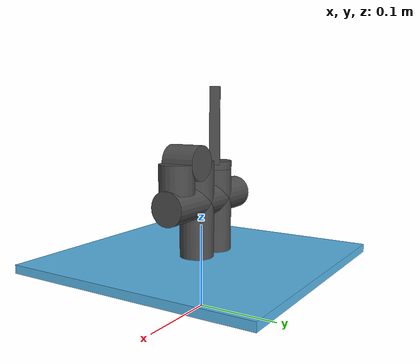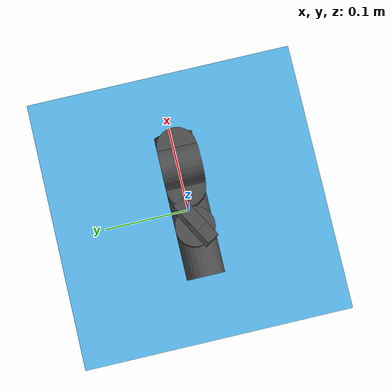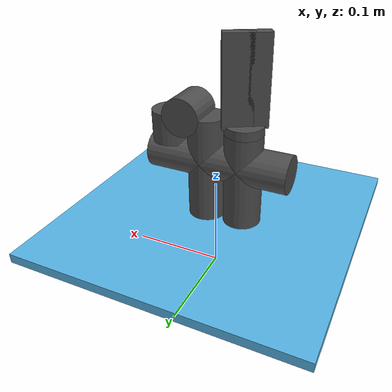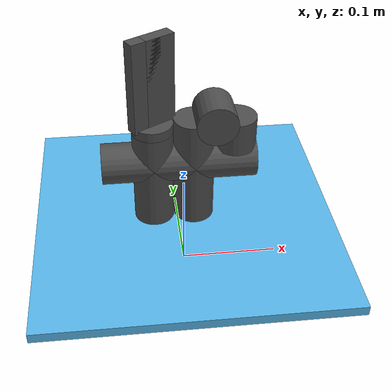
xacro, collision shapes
<?xml version="1.0"?>
<robot name="alpha" xmlns:xacro="http://ros.org/wiki/xacro">

  <!-- Arguments -->
  <xacro:arg name="use_fake_hardware" default="true" />
  <xacro:arg name="serial_port" default="" />
  <xacro:arg name="state_update_frequency" default="250" />
  <xacro:arg name="controllers_file" default="alpha_controllers.yaml" />
  <xacro:arg name="initial_positions_file" default="initial_positions.yaml" />
  <xacro:arg name="namespace" default="" />
  <xacro:arg name="prefix" default="" />
  <xacro:arg name="use_sim" default="false" />
  <xacro:arg name="description_package" default="alpha_description" />

  <!-- Properties -->
  <xacro:property name="description_package" value="$(arg description_package)" />
  <xacro:property name="prefix" value="$(arg prefix)" />
  <xacro:property name="use_sim" value="$(arg use_sim)" />
  <xacro:property name="ee_prefix" value="standard_jaws_" />

  <!-- Imports -->
  <xacro:include filename="$(find ${description_package})/xacro/alpha_platform.urdf.xacro" />
  <xacro:include filename="$(find ${description_package})/xacro/alpha.ros2_control.xacro" />

  <!-- Define a world frame for Moveit -->
  <link name="world" />

  <xacro:alpha_platform_urdf
    prefix="${prefix}"
    ee_prefix="${ee_prefix}"
    parent="world"
    description_package="${description_package}">
    <origin xyz="0 0 0.06" rpy="0 0 0" />
  </xacro:alpha_platform_urdf>

  <xacro:alpha_system
    prefix="${prefix}"
    ee_prefix="${ee_prefix}"
    name="ReachAlpha5"
    serial_port="$(arg serial_port)"
    state_update_frequency="$(arg state_update_frequency)"
    initial_positions_file="$(arg initial_positions_file)"
    description_package="${description_package}" use_sim="${use_sim}"
    use_fake_hardware="$(arg use_fake_hardware)"
  />

  <!-- Include Gazebo requirements -->
  <xacro:if value="${use_sim}">
    <xacro:include filename="$(find ${description_package})/xacro/alpha.gazebo.xacro" />
    <xacro:alpha_gazebo
      prefix="${prefix}"
      ee_prefix="${ee_prefix}"
      description_package="${description_package}"
      namespace="$(arg namespace)"
      controllers_file="$(arg controllers_file)" />
  </xacro:if>

</robot>

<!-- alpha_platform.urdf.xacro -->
<robot name="alpha_platform_urdf" xmlns:xacro="http://ros.org/wiki/xacro">

  <xacro:macro name="alpha_platform_urdf"
    params="
      parent
      prefix
      ee_prefix
      description_package
      *origin">

    <!-- Define a base platform for the alpha -->
    <link name="${prefix}platform">
      <visual>
        <origin rpy="0 0 0" xyz="0 0 0" />
        <geometry>
          <box size="0.3 0.3 0.1" />
        </geometry>
      </visual>
      <collision>
        <geometry>
          <box size="0.3 0.3 0.01" />
        </geometry>
        <origin rpy="0 0 0" xyz="0 0 0" />
      </collision>
    </link>

    <link name="${prefix}base_footprint" />

    <joint name="${prefix}platform_base_joint" type="fixed">
      <xacro:insert_block name="origin" />
      <parent link="${parent}" />
      <child link="${prefix}platform" />
    </joint>

    <joint name="${prefix}platform_joint" type="fixed">
      <origin rpy="0 0 0" xyz="0.05 0 0.07" />
      <parent link="${prefix}platform" />
      <child link="${prefix}base_footprint" />
    </joint>

    <xacro:include filename="$(find ${description_package})/xacro/alpha.urdf.xacro" />

    <xacro:alpha_urdf
      parent="${prefix}base_footprint"
      prefix="${prefix}"
      ee_prefix="${ee_prefix}"
      description_package="${description_package}">
      <origin xyz="0 0 0" rpy="0 0 0" />
    </xacro:alpha_urdf>

  </xacro:macro>

</robot>

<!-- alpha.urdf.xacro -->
<robot xmlns:xacro="http://ros.org/wiki/xacro">

  <xacro:macro name="alpha_urdf"
    params="
      parent
      prefix
      ee_prefix
      description_package
      *origin">

    <material name="${prefix}black">
      <color rgba="0.3 0.3 0.3 1" />
    </material>

    <link name="${prefix}base_link">
      <visual>
        <origin rpy="0 0 0" xyz="0 0 0" />
        <geometry>
          <box size="0.001 0.001 0.001" />
        </geometry>
      </visual>
      <inertial>
        <mass value="0.0001" />
        <inertia
          ixx="0.0001"
          ixy="0"
          ixz="0"
          iyy="0.0001"
          iyz="0"
          izz="0.0001"
        />
      </inertial>
    </link>

    <link name="${prefix}m3_inline_link">
      <visual>
        <geometry>
          <mesh filename="file://$(find ${description_package})/meshes/M3-INLINE.stl" />
        </geometry>
        <origin rpy="0 0 0" xyz="0 0 0" />
        <material name="${prefix}black" />
      </visual>
      <collision>
        <geometry>
          <cylinder length="0.150" radius="0.020" />
        </geometry>
        <origin rpy="0 1.57075 0" xyz="-0.055 0 0" />
      </collision>
      <inertial>
        <mass value="0.341" />
        <origin xyz="-0.055 0 0" />
        <inertia
          ixx="0.0000682"
          ixy="0"
          ixz="0"
          iyy="0.000673"
          iyz="0"
          izz="0.000673"
        />
      </inertial>
    </link>

    <link name="${prefix}m2_1_1_link">
      <visual>
        <geometry>
          <mesh filename="file://$(find ${description_package})/meshes/M2-1-1.stl" />
        </geometry>
        <origin rpy="0 0 0" xyz="0 0 0" />
        <material name="${prefix}black" />
      </visual>
      <collision>
        <geometry>
          <cylinder length="0.033" radius="0.020" />
        </geometry>
        <origin rpy="0 0 0" xyz="0 0 0.0165" />
      </collision>
      <inertial>
        <mass value="0.194" />
        <origin xyz="0 0 0.0165" />
        <inertia
          ixx="0.000037"
          ixy="0"
          ixz="0"
          iyy="0.000037"
          iyz="0"
          izz="0.0000388"
        />
      </inertial>
    </link>

    <link name="${prefix}m2_joint_link">
      <visual>
        <geometry>
          <mesh filename="file://$(find ${description_package})/meshes/M2.stl" />
        </geometry>
        <origin rpy="0 0 0" xyz="0 0 0" />
        <material name="${prefix}black" />
      </visual>
      <collision>
        <geometry>
          <cylinder length="0.145" radius="0.020" />
        </geometry>
        <origin rpy="0 0 0" xyz="-0.02 0 -0.0725" />
      </collision>
      <collision>
        <geometry>
          <cylinder length="0.040" radius="0.020" />
        </geometry>
        <origin rpy="1.5707 0 0" xyz="0 0 0" />
      </collision>
      <collision>
        <geometry>
          <cylinder length="0.040" radius="0.020" />
        </geometry>
        <origin rpy="1.5707 0 0" xyz="-0.040 0 -0.1453" />
      </collision>
      <inertial>
        <mass value="0.429" />
        <origin xyz="-0.02 0 -0.0725" />
        <inertia
          ixx="0.0008907"
          ixy="0"
          ixz="0"
          iyy="0.0008907"
          iyz="0"
          izz="0.0000858"
        />
      </inertial>
    </link>

    <link name="${prefix}m2_1_2_link">
      <visual>
        <geometry>
          <mesh filename="file://$(find ${description_package})/meshes/M2-1-3.stl" />
        </geometry>
        <origin rpy="0 0 0" xyz="0 0 0" />
        <material name="${prefix}black" />
      </visual>
      <collision>
        <geometry>
          <cylinder length="0.033" radius="0.020" />
        </geometry>
        <origin rpy="0 0 0" xyz="0.02 0 0.0165" />
      </collision>
      <inertial>
        <mass value="0.115" />
        <origin xyz="0.02 0 0.0165" />
        <inertia
          ixx="0.0000219"
          ixy="0"
          ixz="0"
          iyy="0.0000219"
          iyz="0"
          izz="0.000023"
        />
      </inertial>
    </link>

    <link name="${prefix}m1_link">
      <visual>
        <geometry>
          <mesh
            filename="file://$(find ${description_package})/meshes/RS1-100-101-123.stl" />
        </geometry>
        <origin rpy="0 -1.5707 0" xyz="0 0 0" />
        <material name="${prefix}black" />
      </visual>
      <collision>
        <geometry>
          <cylinder length="0.1" radius="0.020" />
        </geometry>
        <origin rpy="0 0 0" xyz="0 0 0.05" />
      </collision>
      <inertial>
        <mass value="0.200" />
        <origin xyz="0 0 0.05" />
        <inertia
          ixx="0.0001867"
          ixy="0"
          ixz="0"
          iyy="0.0001867"
          iyz="0"
          izz="0.00004"
        />
      </inertial>
    </link>

    <link name="${prefix}ee_base_link">
      <inertial>
        <mass value="0.0001" />
        <inertia
          ixx="0.0001"
          ixy="0"
          ixz="0"
          iyy="0.0001"
          iyz="0"
          izz="0.0001"
        />
      </inertial>
    </link>

    <link name="${prefix}push_rod">
      <inertial>
        <mass value="0.0001" />
        <inertia
          ixx="0.0001"
          ixy="0"
          ixz="0"
          iyy="0.0001"
          iyz="0"
          izz="0.0001"
        />
      </inertial>
    </link>

    <joint name="${prefix}base_joint" type="fixed">
      <xacro:insert_block name="origin" />
      <parent link="${parent}" />
      <child link="${prefix}base_link" />
    </joint>

    <joint name="${prefix}base_link_joint" type="fixed">
      <parent link="${prefix}base_link" />
      <child link="${prefix}m3_inline_link" />
      <origin rpy="0 0 0" />
    </joint>

    <joint name="${prefix}axis_e" type="revolute">
      <parent link="${prefix}m3_inline_link" />
      <child link="${prefix}m2_1_1_link" />
      <origin xyz="0 0 0.014" />
      <axis xyz="0 0 1" />
      <limit effort="9.0" lower="0.0" upper="6.10" velocity="0.5" />
    </joint>

    <joint name="${prefix}axis_d" type="revolute">
      <parent link="${prefix}m2_1_1_link" />
      <child link="${prefix}m2_joint_link" />
      <origin xyz="-0.02 0 0.033" />
      <axis xyz="0 1 0" />
      <!-- The true lower limit is 0.0; however, this breaks for some reason with ros2_control -->
      <limit effort="9.0" lower="-3.49" upper="3.49" velocity="0.5" />
    </joint>

    <joint name="${prefix}axis_c" type="revolute">
      <parent link="${prefix}m2_joint_link" />
      <child link="${prefix}m2_1_2_link" />
      <origin xyz="-0.04 0 -0.1453" rpy="0 0 3.14159" />
      <axis xyz="0 1 0" />
      <limit effort="9.0" lower="0.0" upper="3.22" velocity="0.5" />
    </joint>

    <joint name="${prefix}axis_b" type="revolute">
      <parent link="${prefix}m2_1_2_link" />
      <child link="${prefix}m1_link" />
      <origin xyz="0.02 0 0.033" rpy="0 0 2.09439" />
      <axis xyz="0 0 -1" />
      <limit effort="9.0" lower="0.0" upper="3.22" velocity="0.5" />
    </joint>

    <joint name="${prefix}ee_joint" type="fixed">
      <origin rpy="0 0 0" xyz="0 0 0.09975" />
      <parent link="${prefix}m1_link" />
      <child link="${prefix}ee_base_link" />
    </joint>

    <joint name="${prefix}axis_a" type="prismatic">
      <origin rpy="0 0 0" xyz="0 0 0.009" />
      <parent link="${prefix}ee_base_link" />
      <child link="${prefix}push_rod" />
      <axis xyz="0 0 1" />
      <limit effort="10" lower="0" upper="0.015" velocity="10" />
    </joint>

    <xacro:include
      filename="$(find ${description_package})/xacro/end_effectors/standard_jaws.urdf.xacro" />

    <xacro:standard_jaws parent="${prefix}ee_base_link"
      prefix="${prefix}${ee_prefix}"
      axis_a="${prefix}axis_a" description_package="${description_package}">
      <origin xyz="0 0 0" rpy="0 0 0" />
    </xacro:standard_jaws>

  </xacro:macro>

</robot>

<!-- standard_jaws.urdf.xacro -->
<robot xmlns:xacro="http://ros.org/wiki/xacro">

  <xacro:macro name="standard_jaws"
    params="parent prefix description_package axis_a *origin">

    <material name="${prefix}black">
      <color rgba="0.3 0.3 0.3 1" />
    </material>

    <link name="${prefix}base_link">
      <visual>
        <geometry>
          <mesh
            filename="file://$(find ${description_package})/meshes/end_effectors/RS1-124.stl" />
        </geometry>
        <material name="${prefix}black" />
      </visual>
      <collision>
        <geometry>
          <cylinder length="0.00975" radius="0.020" />
        </geometry>
        <origin rpy="0 0 0" xyz="0 0 0.004875" />
      </collision>
      <inertial>
        <mass value="0.023" />
        <origin xyz="0 0 0.004875" />
        <inertia
          ixx="0.000002422"
          ixy="0"
          ixz="0"
          iyy="0.000002422"
          iyz="0"
          izz="0.0000046"
        />
      </inertial>
    </link>

    <link name="${prefix}rs1_130_link">
      <visual>
        <geometry>
          <mesh
            filename="file://$(find ${description_package})/meshes/end_effectors/RS1-130.stl" />
        </geometry>
        <material name="${prefix}black" />
        <origin xyz="0 0 0" rpy="0 0 0" />
      </visual>
      <collision>
        <geometry>
          <box size="0.012 0.03 0.09" />
        </geometry>
        <origin xyz="0.0 -0.008 0.045" rpy="0 0 0" />
      </collision>
      <inertial>
        <mass value="0.055" />
        <origin xyz="0.0 -0.008 0.045" rpy="0 0 0" />
        <inertia
          ixx="0.00004125"
          ixy="0"
          ixz="0"
          iyy="0.000037785"
          iyz="0"
          izz="0.000004785"
        />
      </inertial>
    </link>

    <link name="${prefix}rs1_139_link">
      <visual>
        <geometry>
          <mesh
            filename="file://$(find ${description_package})/meshes/end_effectors/RS1-139.stl" />
        </geometry>
        <material name="${prefix}black" />
        <origin xyz="0 0 0" rpy="0 0 0" />
      </visual>
      <collision>
        <geometry>
          <box size="0.012 0.03 0.09" />
        </geometry>
        <origin xyz="0.0 0.008 0.045" rpy="0 0 0" />
      </collision>
      <inertial>
        <mass value="0.055" />
        <origin xyz="0.0 0.008 0.045" rpy="0 0 0" />
        <inertia
          ixx="0.00004125"
          ixy="0"
          ixz="0"
          iyy="0.000037785"
          iyz="0"
          izz="0.000004785"
        />
      </inertial>
    </link>

    <link name="${prefix}tool">
      <inertial>
        <mass value="0.0001" />
        <inertia
          ixx="0.0001"
          ixy="0"
          ixz="0"
          iyy="0.0001"
          iyz="0"
          izz="0.0001"
        />
      </inertial>
    </link>

    <joint name="${prefix}base_joint" type="fixed">
      <xacro:insert_block name="origin" />
      <parent link="${parent}" />
      <child link="${prefix}base_link" />
      <origin xyz="0 0 0" rpy="0 0 0" />
    </joint>

    <joint name="${prefix}rs1_130_joint" type="revolute">
      <origin xyz="0 0.0155 0.0069" rpy="0 0 0" />
      <parent link="${prefix}base_link" />
      <child link="${prefix}rs1_130_link" />
      <axis xyz="-1 0 0" />
      <limit lower="0" upper="0.5" effort="10" velocity="10" />
      <mimic joint="${axis_a}" multiplier="51" offset="0" />
    </joint>

    <joint name="${prefix}rs1_139_joint" type="revolute">
      <origin xyz="0 -0.0155 0.0069" rpy="0 0 0" />
      <parent link="${prefix}base_link" />
      <child link="${prefix}rs1_139_link" />
      <axis xyz="1 0 0" />
      <limit lower="0" upper="0.5" effort="10" velocity="10" />
      <mimic joint="${prefix}rs1_130_joint" multiplier="1" offset="0" />
    </joint>

    <joint name="${prefix}tool_joint" type="fixed">
      <origin xyz="0 0 0.04" rpy="0 -1.571 0" />
      <parent link="${prefix}base_link" />
      <child link="${prefix}tool" />
    </joint>

  </xacro:macro>

</robot>
